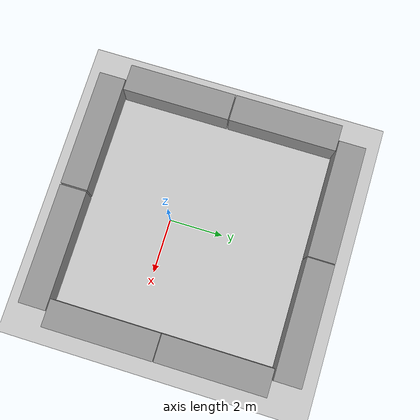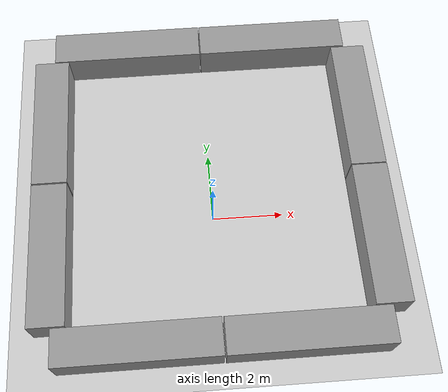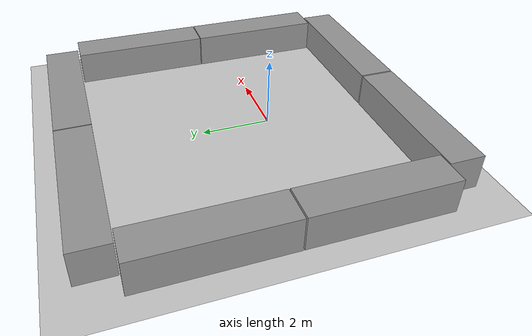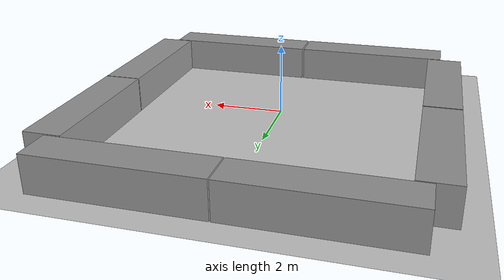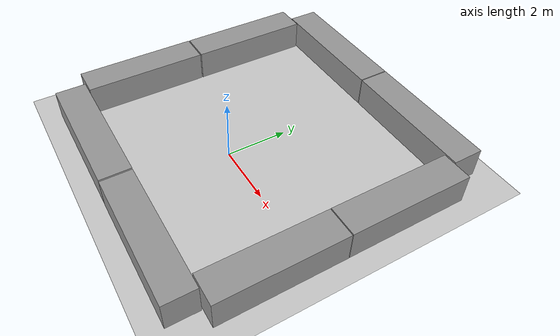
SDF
<sdf version="1.6">
 <world name="default">
  <scene><ambient>0.4 0.4 0.4 1</ambient><background>0.7 0.7 0.7 1</background><shadows>1</shadows></scene>
  <light name="sun" type="directional">
   <pose>0 0 10 0 -0 0</pose>
   <diffuse>0.8 0.8 0.8 1</diffuse>
   <specular>0.2 0.2 0.2 1</specular>
   <attenuation>
    <range>1000</range>
    <constant>0.9</constant>
    <linear>0.01</linear>
    <quadratic>0.001</quadratic>
   </attenuation>
   <direction>-0.5 0.1 -0.9</direction>
  </light>
  <model name="ground_plane">
   <static>1</static>
   <link name="link">
    <collision name="collision">
     <geometry><plane><normal>0 0 1</normal><size>100 100</size></plane></geometry>
     <surface>
      <contact><collide_bitmask>65535</collide_bitmask></contact>
      <friction><ode><mu>100</mu><mu2>50</mu2></ode></friction>
     </surface>
    </collision>
    <visual name="visual">
     <cast_shadows>0</cast_shadows>
     <geometry><plane><normal>0 0 1</normal><size>100 100</size></plane></geometry>
     <material>
      <script><uri>file://media/materials/scripts/gazebo.material</uri><name>Gazebo/Grey</name></script>
     </material>
    </visual>
   </link>
  </model>
  <physics name="default_physics" default="0" type="ode">
   <real_time_update_rate>1000</real_time_update_rate>
   <max_step_size>0.001</max_step_size>
   <real_time_factor>1</real_time_factor>
   <ode>
    <solver>
     <type>quick</type>
     <iters>150</iters>
     <precon_iters>0</precon_iters>
     <sor>1.4</sor>
     <use_dynamic_moi_rescaling>1</use_dynamic_moi_rescaling>
    </solver>
    <constraints>
     <cfm>1e-05</cfm>
     <erp>0.2</erp>
     <contact_max_correcting_vel>2000</contact_max_correcting_vel>
     <contact_surface_layer>0.01</contact_surface_layer>
    </constraints>
   </ode>
  </physics>
  <gravity>0 0 -9.8</gravity>
  <magnetic_field>6e-06 2.3e-05 -4.2e-05</magnetic_field>
  <atmosphere type="adiabatic"/>
  <audio><device>default</device></audio>
  <spherical_coordinates>
   <surface_model>EARTH_WGS84</surface_model>
   <latitude_deg>0</latitude_deg>
   <longitude_deg>0</longitude_deg>
   <elevation>0</elevation>
   <heading_deg>0</heading_deg>
  </spherical_coordinates>
  <model name="unit_box">
   <pose>4.50464 3.01014 0.499233 -0.000381 0 0</pose>
   <link name="link">
    <inertial>
     <mass>1</mass>
     <inertia>
      <ixx>0.166667</ixx>
      <ixy>0</ixy>
      <ixz>0</ixz>
      <iyy>0.166667</iyy>
      <iyz>0</iyz>
      <izz>0.166667</izz>
     </inertia>
    </inertial>
    <collision name="collision"><geometry><box><size>1 4.02183 1</size></box></geometry></collision>
    <visual name="visual">
     <geometry><box><size>1 4.02183 1</size></box></geometry>
     <material>
      <script><name>Gazebo/Grey</name><uri>file://media/materials/scripts/gazebo.material</uri></script>
     </material>
    </visual>
   </link>
  </model>
  <model name="unit_box_clone">
   <pose>4.50748 -1.0369 0.499233 -0.000381 -0 0</pose>
   <link name="link">
    <inertial>
     <mass>1</mass>
     <inertia>
      <ixx>0.166667</ixx>
      <ixy>0</ixy>
      <ixz>0</ixz>
      <iyy>0.166667</iyy>
      <iyz>0</iyz>
      <izz>0.166667</izz>
     </inertia>
    </inertial>
    <collision name="collision"><geometry><box><size>1 4.02183 1</size></box></geometry></collision>
    <visual name="visual">
     <geometry><box><size>1 4.02183 1</size></box></geometry>
     <material>
      <script><name>Gazebo/Grey</name><uri>file://media/materials/scripts/gazebo.material</uri></script>
     </material>
    </visual>
   </link>
  </model>
  <model name="unit_box_clone_0">
   <pose>-4.51598 3.03135 0.499233 0.000381 -0 0</pose>
   <link name="link">
    <inertial>
     <mass>1</mass>
     <inertia>
      <ixx>0.166667</ixx>
      <ixy>0</ixy>
      <ixz>0</ixz>
      <iyy>0.166667</iyy>
      <iyz>0</iyz>
      <izz>0.166667</izz>
     </inertia>
    </inertial>
    <collision name="collision"><geometry><box><size>1 4.02183 1</size></box></geometry></collision>
    <visual name="visual">
     <geometry><box><size>1 4.02183 1</size></box></geometry>
     <material>
      <script><name>Gazebo/Grey</name><uri>file://media/materials/scripts/gazebo.material</uri></script>
     </material>
    </visual>
   </link>
  </model>
  <model name="unit_box_clone_0_clone">
   <pose>-4.51467 -1.02934 0.499233 0.000381 -0 0</pose>
   <link name="link">
    <inertial>
     <mass>1</mass>
     <inertia>
      <ixx>0.166667</ixx>
      <ixy>0</ixy>
      <ixz>0</ixz>
      <iyy>0.166667</iyy>
      <iyz>0</iyz>
      <izz>0.166667</izz>
     </inertia>
    </inertial>
    <collision name="collision"><geometry><box><size>1 4.02183 1</size></box></geometry></collision>
    <visual name="visual">
     <geometry><box><size>1 4.02183 1</size></box></geometry>
     <material>
      <script><name>Gazebo/Grey</name><uri>file://media/materials/scripts/gazebo.material</uri></script>
     </material>
    </visual>
   </link>
  </model>
  <model name="unit_box_0">
   <pose>-2.19824 -3.57462 0.498829 0 -0.000533 0</pose>
   <link name="link">
    <inertial>
     <mass>1</mass>
     <inertia>
      <ixx>0.166667</ixx>
      <ixy>0</ixy>
      <ixz>0</ixz>
      <iyy>0.166667</iyy>
      <iyz>0</iyz>
      <izz>0.166667</izz>
     </inertia>
    </inertial>
    <collision name="collision"><geometry><box><size>4.39771 1 1</size></box></geometry></collision>
    <visual name="visual">
     <geometry><box><size>4.39771 1 1</size></box></geometry>
     <material>
      <script><name>Gazebo/Grey</name><uri>file://media/materials/scripts/gazebo.material</uri></script>
     </material>
    </visual>
   </link>
  </model>
  <model name="unit_box_0_clone">
   <pose>2.2515 -3.57852 0.498829 0 -0.000533 0</pose>
   <link name="link">
    <inertial>
     <mass>1</mass>
     <inertia>
      <ixx>0.166667</ixx>
      <ixy>0</ixy>
      <ixz>0</ixz>
      <iyy>0.166667</iyy>
      <iyz>0</iyz>
      <izz>0.166667</izz>
     </inertia>
    </inertial>
    <collision name="collision"><geometry><box><size>4.39772 1 1</size></box></geometry></collision>
    <visual name="visual">
     <geometry><box><size>4.39772 1 1</size></box></geometry>
     <material>
      <script><name>Gazebo/Grey</name><uri>file://media/materials/scripts/gazebo.material</uri></script>
     </material>
    </visual>
   </link>
  </model>
  <model name="unit_box_0_clone_clone">
   <pose>2.19796 5.5689 0.498829 0 0.000533 0</pose>
   <link name="link">
    <inertial>
     <mass>1</mass>
     <inertia>
      <ixx>0.166667</ixx>
      <ixy>0</ixy>
      <ixz>0</ixz>
      <iyy>0.166667</iyy>
      <iyz>0</iyz>
      <izz>0.166667</izz>
     </inertia>
    </inertial>
    <collision name="collision"><geometry><box><size>4.39772 1 1</size></box></geometry></collision>
    <visual name="visual">
     <geometry><box><size>4.39772 1 1</size></box></geometry>
     <material>
      <script><name>Gazebo/Grey</name><uri>file://media/materials/scripts/gazebo.material</uri></script>
     </material>
    </visual>
   </link>
  </model>
  <model name="unit_box_0_clone_clone_0">
   <pose>-2.23115 5.57116 0.498829 0 -0.000533 0</pose>
   <link name="link">
    <inertial>
     <mass>1</mass>
     <inertia>
      <ixx>0.166667</ixx>
      <ixy>0</ixy>
      <ixz>0</ixz>
      <iyy>0.166667</iyy>
      <iyz>0</iyz>
      <izz>0.166667</izz>
     </inertia>
    </inertial>
    <collision name="collision"><geometry><box><size>4.39772 1 1</size></box></geometry></collision>
    <visual name="visual">
     <geometry><box><size>4.39772 1 1</size></box></geometry>
     <material>
      <script><name>Gazebo/Grey</name><uri>file://media/materials/scripts/gazebo.material</uri></script>
     </material>
    </visual>
   </link>
  </model>
 </world>
</sdf>
